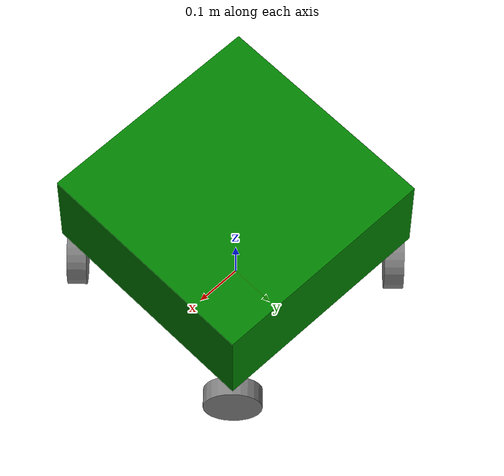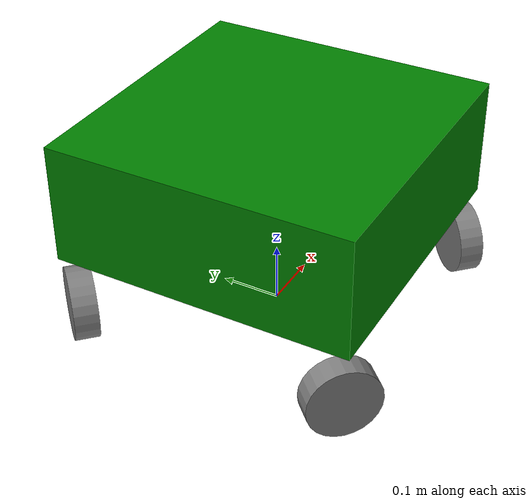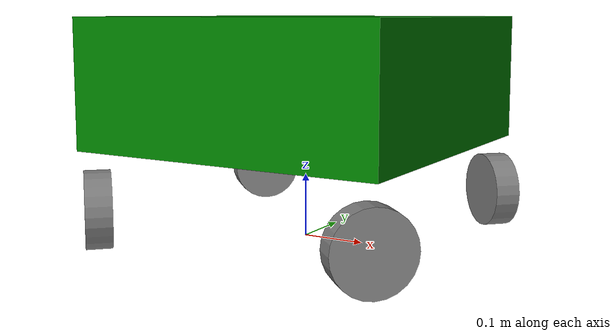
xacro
<?xml version="1.0"?>
<robot name="omni_robot" xmlns:xacro="https://www.ros.org/wiki/xacro">

    <xacro:include filename="common_properties.xacro"/>
    <xacro:include filename="mobile_base.xacro"/>
    <xacro:include filename="mobile_base_gazebo.xacro"/>
    <xacro:include filename="camera.xacro"/>

</robot>

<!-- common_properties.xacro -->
<robot xmlns:xacro="https://www.ros.org/wiki/xacro">

    <material name="green">
        <color rgba="0 0.5 0 1"/>
    </material>

    <material name="grey">
        <color rgba="0.5 0.5 0.5 1"/>
    </material>

    <material name="blue">
        <color rgba="0 0.2 0.8 1"/>
    </material>

    <xacro:macro name="box_inertia" params="m x y z o_xyz o_rpy">
        <inertial>
            <mass value="${m}"/>
            <origin xyz="${o_xyz}" rpy="${o_rpy}"/>
            <inertia ixx="${(m/12.0)*(y*y+z*z)}" ixy="0" ixz="0"
                iyy="${(m/12.0)*(x*x+z*z)}" iyz="0"
                izz="${(m/12.0)*(y*y+x*x)}"/>
        </inertial>
    </xacro:macro>

    <xacro:macro name="cylinder_inertia" params="m r l o_xyz o_rpy">
        <inertial>
            <mass value="${m}"/>
            <origin xyz="${o_xyz}" rpy="${o_rpy}"/>
            <inertia ixx="${(m/12.0)*(3*r*r+l*l)}" ixy="0" ixz="0"
                iyy="${(m/12.0)*(3*r*r+l*l)}" iyz="0"
                izz="${(m/2.0)*(r*r)}"/>
        </inertial>
    </xacro:macro>

    <xacro:macro name="sphere_inertia" params="m r o_xyz o_rpy">
        <inertial>
            <mass value="${m}"/>
            <origin xyz="${o_xyz}" rpy="${o_rpy}"/>
            <inertia ixx="${(2.0/5.0)*m*(r*r)}" ixy="0" ixz="0"
                iyy="${(2.0/5.0)*m*(r*r)}" iyz="0"
                izz="${(2.0/5.0)*m*(r*r)}"/>
        </inertial>
    </xacro:macro>

</robot>

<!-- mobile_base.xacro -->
<robot xmlns:xacro="https://www.ros.org/wiki/xacro">

    <!-- ========== 底盘尺寸 ========== -->
    <xacro:property name="base_length" value="0.5"/>
    <xacro:property name="base_width" value="0.5"/>
    <xacro:property name="base_height" value="0.2"/>

    <!-- ========== 全向轮尺寸 ========== -->
    <xacro:property name="wheel_radius" value="0.06"/>
    <xacro:property name="wheel_length" value="0.04"/>
    <xacro:property name="wheel_mass" value="0.5"/>

    <!-- 轮子到底盘底部的间隙 (m) -->
    <xacro:property name="wheel_chassis_gap" value="0.03"/>

    <!-- ========== 轮子宏 ========== -->
    <!-- 全向轮：圆柱体，旋转轴在 link 本地坐标系中沿 y 轴 -->
    <!-- 滚子垂直于主轮（沿 y 轴方向自由滑动） -->
    <!-- 关节 rpy 控制轮子在底盘坐标系中的朝向（X 型 45° 布局） -->
    <xacro:macro name="wheel_link" params="prefix color">
        <link name="${prefix}_wheel_link">
            <visual>
                <geometry>
                    <cylinder radius="${wheel_radius}" length="${wheel_length}"/>
                </geometry>
                <origin xyz="0 0 0" rpy="${pi/2.0} 0 0"/>
                <material name="${color}"/>
            </visual>
            <collision>
                <geometry>
                    <cylinder radius="${wheel_radius}" length="${wheel_length}"/>
                </geometry>
                <origin xyz="0 0 0" rpy="${pi/2.0} 0 0"/>
            </collision>
            <xacro:cylinder_inertia m="${wheel_mass}" r="${wheel_radius}" l="${wheel_length}"
                                    o_xyz="0 0 0" o_rpy="${pi/2.0} 0 0"/>
        </link>
    </xacro:macro>

    <!-- ========== 基座标系 ========== -->
    <link name="base_footprint"/>

    <!-- ========== 底盘 link ========== -->
    <link name="base_link">
        <visual>
            <geometry>
                <box size="${base_length} ${base_width} ${base_height}"/>
            </geometry>
            <origin xyz="0 0 0" rpy="0 0 0"/>
            <material name="green"/>
        </visual>
        <collision>
            <geometry>
                <box size="${base_length} ${base_width} ${base_height}"/>
            </geometry>
            <origin xyz="0 0 0" rpy="0 0 0"/>
        </collision>
        <xacro:box_inertia m="8.0" x="${base_length}" y="${base_width}" z="${base_height}"
                           o_xyz="0 0 0" o_rpy="0 0 0"/>
    </link>

    <!-- ========== 四个全向轮 link ========== -->
    <xacro:wheel_link prefix="fl" color="grey"/>
    <xacro:wheel_link prefix="fr" color="grey"/>
    <xacro:wheel_link prefix="rl" color="grey"/>
    <xacro:wheel_link prefix="rr" color="grey"/>

    <!-- ========== 轮子关节（X 型全向轮布局） ========== -->
    <xacro:property name="wheel_x" value="${base_length/2.0 - wheel_length/2.0}"/>
    <xacro:property name="wheel_y" value="${base_width/2.0 - wheel_length/2.0}"/>
    <xacro:property name="wheel_z" value="${-(base_height/2.0 + wheel_radius + wheel_chassis_gap)}"/>

    <!-- FL (front-left, 左上)：轴朝向右前 → 指向 (0.707, 0.707, 0) -->
    <joint name="base_fl_wheel_joint" type="continuous">
        <parent link="base_link"/>
        <child link="fl_wheel_link"/>
        <origin xyz="${wheel_x} ${wheel_y} ${wheel_z}" rpy="0 0 ${-pi/4}"/>
        <axis xyz="0 1 0"/>
    </joint>

    <!-- FR (front-right, 右上)：轴朝向右侧 → 指向 (0.707, -0.707, 0) -->
    <joint name="base_fr_wheel_joint" type="continuous">
        <parent link="base_link"/>
        <child link="fr_wheel_link"/>
        <origin xyz="${wheel_x} ${-wheel_y} ${wheel_z}" rpy="0 0 ${-3*pi/4}"/>
        <axis xyz="0 1 0"/>
    </joint>

    <!-- RL (rear-left, 左下)：轴指向左后 → 指向 (-0.707, 0.707, 0) -->
    <joint name="base_rl_wheel_joint" type="continuous">
        <parent link="base_link"/>
        <child link="rl_wheel_link"/>
        <origin xyz="${-wheel_x} ${wheel_y} ${wheel_z}" rpy="0 0 ${pi/4}"/>
        <axis xyz="0 1 0"/>
    </joint>

    <!-- RR (rear-right, 右下)：轴指向左 → 指向 (-0.707, -0.707, 0) -->
    <joint name="base_rr_wheel_joint" type="continuous">
        <parent link="base_link"/>
        <child link="rr_wheel_link"/>
        <origin xyz="${-wheel_x} ${-wheel_y} ${wheel_z}" rpy="0 0 ${3*pi/4}"/>
        <axis xyz="0 1 0"/>
    </joint>

    <!-- ========== base_footprint → base_link（抬高底盘，轮子刚好触地） ========== -->
    <xacro:property name="base_lift" value="${base_height/2.0 + 2.0*wheel_radius + wheel_chassis_gap}"/>
    <joint name="base_joint" type="fixed">
        <parent link="base_footprint"/>
        <child link="base_link"/>
        <origin xyz="0 0 ${base_lift}" rpy="0 0 0"/>
    </joint>

</robot>

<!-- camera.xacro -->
<robot xmlns:xacro="https://www.ros.org/wiki/xacro">

    <!-- camera link：嵌入底盘中心的小长方体 -->
    <xacro:property name="camera_length" value="0.01"/>
    <xacro:property name="camera_width" value="0.1"/>
    <xacro:property name="camera_height" value="0.05"/>

    <link name="camera_link">
        <visual>
            <geometry>
                <box size="${camera_length} ${camera_width} ${camera_height}"/>
            </geometry>
            <material name="blue"/>
        </visual>
        <collision>
            <geometry>
                <box size="${camera_length} ${camera_width} ${camera_height}"/>
            </geometry>
        </collision>
        <xacro:box_inertia m="0.1" x="${camera_length}" y="${camera_width}" z="${camera_height}"
                           o_xyz="0 0 0" o_rpy="0 0 0"/>
    </link>

    <!-- camera_link 固定在 base_link 几何中心（底盘正中间） -->
    <joint name="base_camera_joint" type="fixed">
        <parent link="base_link"/>
        <child link="camera_link"/>
        <origin xyz="0 0 0" rpy="0 0 0"/>
    </joint>

    <!-- LiDAR 传感器（GPU LiDAR，装在 camera_link 上） -->
    <gazebo reference="camera_link">
        <sensor name="lidar" type="gpu_lidar">
            <pose>0 0 0 0 0 0</pose>
            <topic>/scan</topic>
            <update_rate>10</update_rate>
            <ray>
                <scan>
                    <horizontal>
                        <samples>1440</samples>
                        <resolution>1</resolution>
                        <min_angle>-3.14</min_angle>
                        <max_angle>3.14</max_angle>
                    </horizontal>
                </scan>
                <range>
                    <min>0.05</min>
                    <max>40.0</max>
                    <resolution>0.01</resolution>
                </range>
            </ray>
            <always_on>1</always_on>
            <visualize>true</visualize>
        </sensor>
    </gazebo>

</robot>
